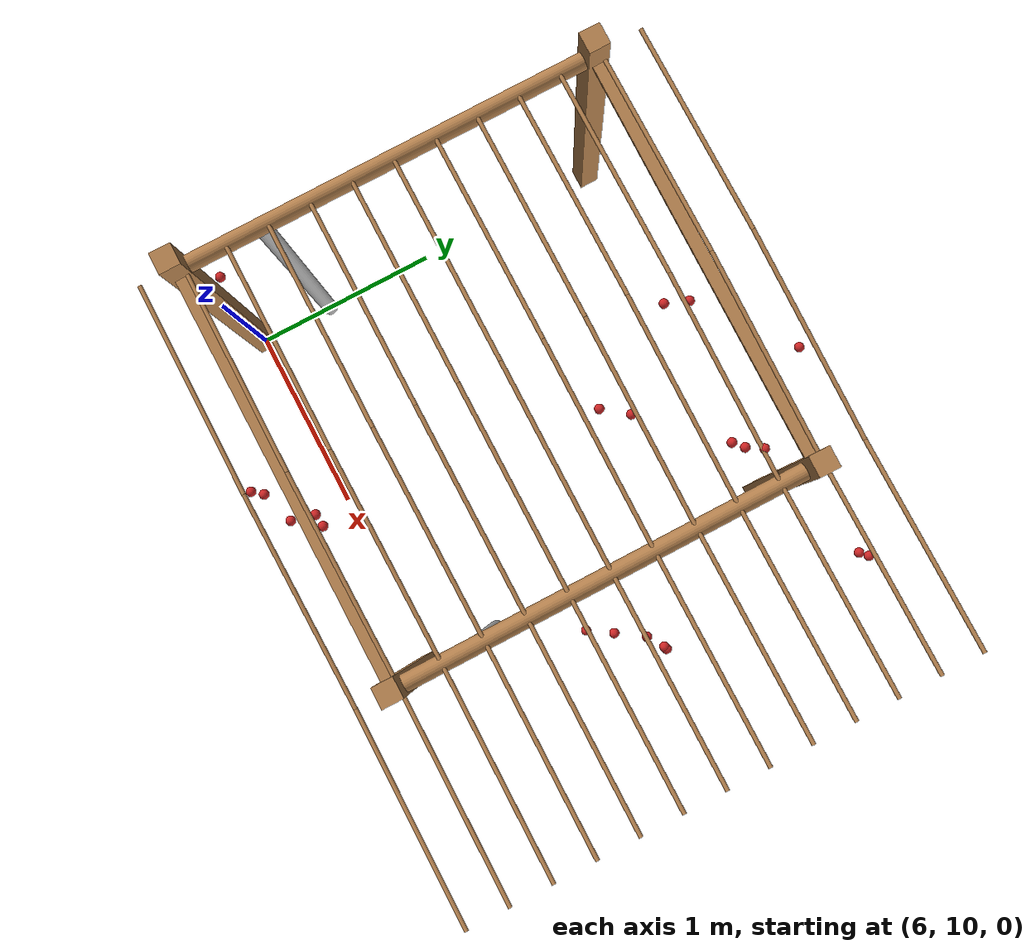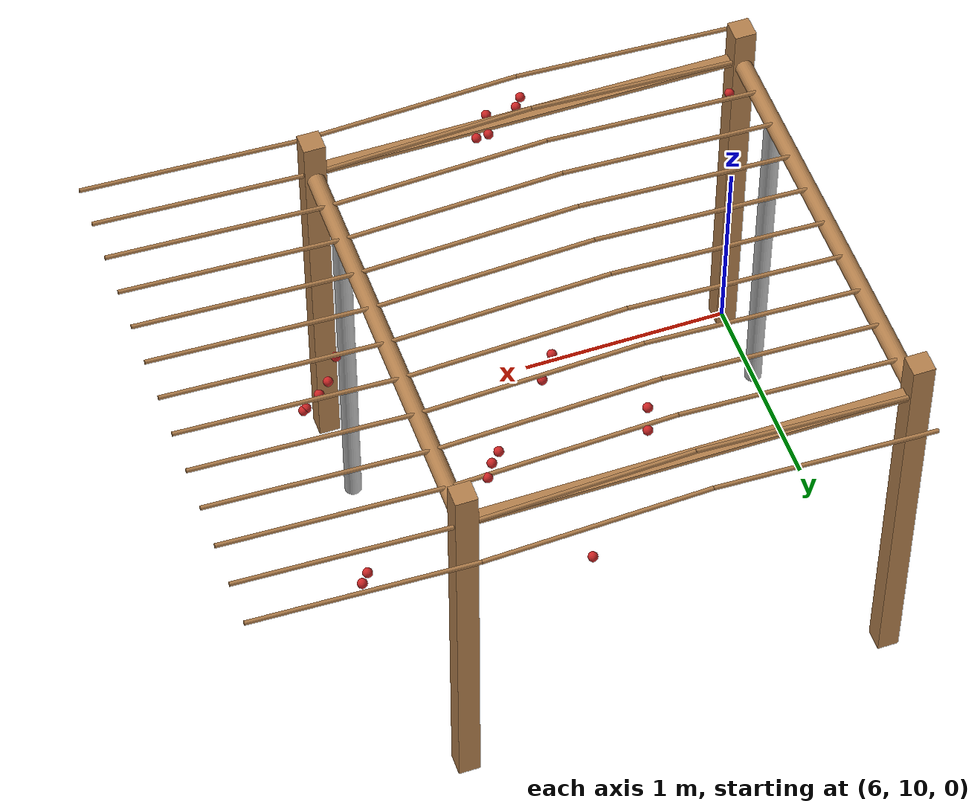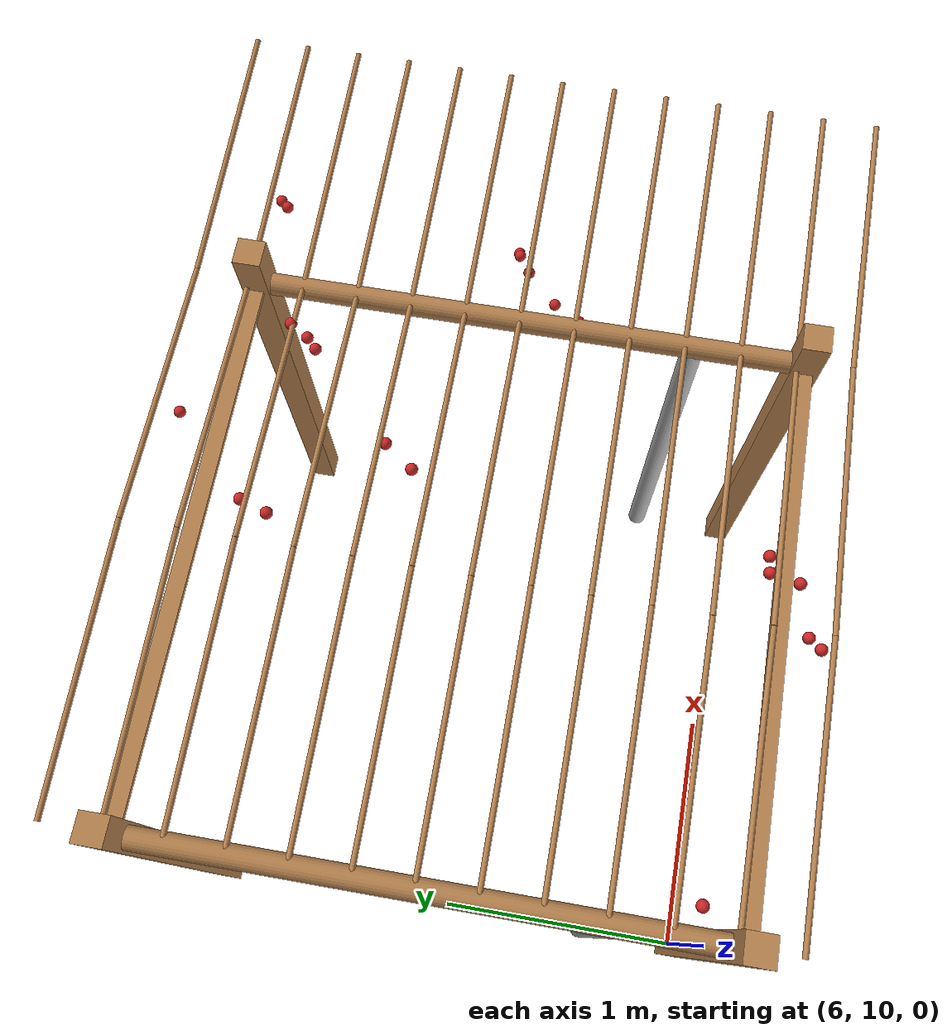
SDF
<sdf version="1.4">
 <model name="pergola">
  <include><name>post_38</name><pose>6.0 10.0 0 0 0 0</pose><uri>model://post</uri></include>
  <include><name>post_39</name><pose>6.0 12.0 0 0 0 0</pose><uri>model://post</uri></include>
  <include><name>post_49</name><pose>8.0 10.0 0 0 0 0</pose><uri>model://post</uri></include>
  <include><name>post_50</name><pose>8.0 12.0 0 0 0 0</pose><uri>model://post</uri></include>
  <link name="beam_38">
   <pose>7.0 10.0 1.81 0 0 0</pose>
   <collision name="collision"><geometry><box><size>2.0 0.06 0.02</size></box></geometry></collision>
   <visual name="visual">
    <geometry><box><size>2.0 0.06 0.02</size></box></geometry>
    <material><script><name>Gazebo/Wood</name></script></material>
   </visual>
   <inertial>
    <mass>5</mass>
    <inertia>
     <ixx>0.0016666666666666668</ixx>
     <ixy>0.0</ixy>
     <ixz>0.0</ixz>
     <iyy>1.6681666666666664</iyy>
     <iyz>0.0</iyz>
     <izz>1.6668333333333332</izz>
    </inertia>
   </inertial>
  </link>
  <link name="beam_39">
   <pose>7.0 12.0 1.81 0 0 0</pose>
   <collision name="collision"><geometry><box><size>2.0 0.06 0.02</size></box></geometry></collision>
   <visual name="visual">
    <geometry><box><size>2.0 0.06 0.02</size></box></geometry>
    <material><script><name>Gazebo/Wood</name></script></material>
   </visual>
   <inertial>
    <mass>5</mass>
    <inertia>
     <ixx>0.0016666666666666668</ixx>
     <ixy>0.0</ixy>
     <ixz>0.0</ixz>
     <iyy>1.6681666666666664</iyy>
     <iyz>0.0</iyz>
     <izz>1.6668333333333332</izz>
    </inertia>
   </inertial>
  </link>
  <include><name>tree_35</name><pose>6.0 10.4 0 0 0 0</pose><uri>model://tree_trunk</uri></include>
  <include><name>tree_45</name><pose>8.0 10.4 0 0 0 0</pose><uri>model://tree_trunk</uri></include>
  <link name="baseBranch_35">
   <pose>6.0 11.0 1.8 1.5707963267948966 0 0</pose>
   <collision name="collision">
    <geometry><cylinder><radius>0.04</radius><length>1.94</length></cylinder></geometry>
   </collision>
   <visual name="visual">
    <geometry><cylinder><radius>0.04</radius><length>1.94</length></cylinder></geometry>
    <material><script><name>Gazebo/WoodFloor</name></script></material>
   </visual>
   <inertial>
    <mass>10</mass>
    <inertia>
     <ixx>3.140333333333333</ixx>
     <ixy>0.0</ixy>
     <ixz>0.0</ixz>
     <iyy>3.140333333333333</iyy>
     <iyz>0.0</iyz>
     <izz>0.008</izz>
    </inertia>
   </inertial>
  </link>
  <link name="baseBranch_45">
   <pose>8.0 11.0 1.8 1.5707963267948966 0 0</pose>
   <collision name="collision">
    <geometry><cylinder><radius>0.04</radius><length>1.94</length></cylinder></geometry>
   </collision>
   <visual name="visual">
    <geometry><cylinder><radius>0.04</radius><length>1.94</length></cylinder></geometry>
    <material><script><name>Gazebo/WoodFloor</name></script></material>
   </visual>
   <inertial>
    <mass>10</mass>
    <inertia>
     <ixx>3.140333333333333</ixx>
     <ixy>0.0</ixy>
     <ixz>0.0</ixz>
     <iyy>3.140333333333333</iyy>
     <iyz>0.0</iyz>
     <izz>0.008</izz>
    </inertia>
   </inertial>
  </link>
  <link name="vine_698">
   <pose>6.5 9.83 1.85 0 1.5208379310729538 0</pose>
   <collision name="collision">
    <geometry><cylinder><radius>0.01</radius><length>1.0012492197250393</length></cylinder></geometry>
   </collision>
   <visual name="visual">
    <geometry><cylinder><radius>0.01</radius><length>1.0012492197250393</length></cylinder></geometry>
    <material><script><name>Gazebo/WoodFloor</name></script></material>
   </visual>
   <inertial>
    <mass>5</mass>
    <inertia>
     <ixx>0.41783333333333345</ixx>
     <ixy>0.0</ixy>
     <ixz>0.0</ixz>
     <iyy>0.41783333333333345</iyy>
     <iyz>0.0</iyz>
     <izz>0.00025</izz>
    </inertia>
   </inertial>
  </link>
  <link name="vine_699">
   <pose>7.5 9.83 1.85 0 -1.5208379310729538 0</pose>
   <collision name="collision">
    <geometry><cylinder><radius>0.01</radius><length>1.0012492197250393</length></cylinder></geometry>
   </collision>
   <visual name="visual">
    <geometry><cylinder><radius>0.01</radius><length>1.0012492197250393</length></cylinder></geometry>
    <material><script><name>Gazebo/WoodFloor</name></script></material>
   </visual>
   <inertial>
    <mass>5</mass>
    <inertia>
     <ixx>0.41783333333333345</ixx>
     <ixy>0.0</ixy>
     <ixz>0.0</ixz>
     <iyy>0.41783333333333345</iyy>
     <iyz>0.0</iyz>
     <izz>0.00025</izz>
    </inertia>
   </inertial>
  </link>
  <link name="vine_700">
   <pose>6.5 10.03 1.85 0 1.5208379310729538 0</pose>
   <collision name="collision">
    <geometry><cylinder><radius>0.01</radius><length>1.0012492197250393</length></cylinder></geometry>
   </collision>
   <visual name="visual">
    <geometry><cylinder><radius>0.01</radius><length>1.0012492197250393</length></cylinder></geometry>
    <material><script><name>Gazebo/WoodFloor</name></script></material>
   </visual>
   <inertial>
    <mass>5</mass>
    <inertia>
     <ixx>0.41783333333333345</ixx>
     <ixy>0.0</ixy>
     <ixz>0.0</ixz>
     <iyy>0.41783333333333345</iyy>
     <iyz>0.0</iyz>
     <izz>0.00025</izz>
    </inertia>
   </inertial>
  </link>
  <link name="vine_701">
   <pose>7.5 10.03 1.85 0 -1.5208379310729538 0</pose>
   <collision name="collision">
    <geometry><cylinder><radius>0.01</radius><length>1.0012492197250393</length></cylinder></geometry>
   </collision>
   <visual name="visual">
    <geometry><cylinder><radius>0.01</radius><length>1.0012492197250393</length></cylinder></geometry>
    <material><script><name>Gazebo/WoodFloor</name></script></material>
   </visual>
   <inertial>
    <mass>5</mass>
    <inertia>
     <ixx>0.41783333333333345</ixx>
     <ixy>0.0</ixy>
     <ixz>0.0</ixz>
     <iyy>0.41783333333333345</iyy>
     <iyz>0.0</iyz>
     <izz>0.00025</izz>
    </inertia>
   </inertial>
  </link>
  <link name="vine_702">
   <pose>6.5 10.23 1.85 0 1.5208379310729538 0</pose>
   <collision name="collision">
    <geometry><cylinder><radius>0.01</radius><length>1.0012492197250393</length></cylinder></geometry>
   </collision>
   <visual name="visual">
    <geometry><cylinder><radius>0.01</radius><length>1.0012492197250393</length></cylinder></geometry>
    <material><script><name>Gazebo/WoodFloor</name></script></material>
   </visual>
   <inertial>
    <mass>5</mass>
    <inertia>
     <ixx>0.41783333333333345</ixx>
     <ixy>0.0</ixy>
     <ixz>0.0</ixz>
     <iyy>0.41783333333333345</iyy>
     <iyz>0.0</iyz>
     <izz>0.00025</izz>
    </inertia>
   </inertial>
  </link>
  <link name="vine_703">
   <pose>7.5 10.23 1.85 0 -1.5208379310729538 0</pose>
   <collision name="collision">
    <geometry><cylinder><radius>0.01</radius><length>1.0012492197250393</length></cylinder></geometry>
   </collision>
   <visual name="visual">
    <geometry><cylinder><radius>0.01</radius><length>1.0012492197250393</length></cylinder></geometry>
    <material><script><name>Gazebo/WoodFloor</name></script></material>
   </visual>
   <inertial>
    <mass>5</mass>
    <inertia>
     <ixx>0.41783333333333345</ixx>
     <ixy>0.0</ixy>
     <ixz>0.0</ixz>
     <iyy>0.41783333333333345</iyy>
     <iyz>0.0</iyz>
     <izz>0.00025</izz>
    </inertia>
   </inertial>
  </link>
  <link name="vine_704">
   <pose>6.5 10.43 1.85 0 1.5208379310729538 0</pose>
   <collision name="collision">
    <geometry><cylinder><radius>0.01</radius><length>1.0012492197250393</length></cylinder></geometry>
   </collision>
   <visual name="visual">
    <geometry><cylinder><radius>0.01</radius><length>1.0012492197250393</length></cylinder></geometry>
    <material><script><name>Gazebo/WoodFloor</name></script></material>
   </visual>
   <inertial>
    <mass>5</mass>
    <inertia>
     <ixx>0.41783333333333345</ixx>
     <ixy>0.0</ixy>
     <ixz>0.0</ixz>
     <iyy>0.41783333333333345</iyy>
     <iyz>0.0</iyz>
     <izz>0.00025</izz>
    </inertia>
   </inertial>
  </link>
  <link name="vine_705">
   <pose>7.5 10.43 1.85 0 -1.5208379310729538 0</pose>
   <collision name="collision">
    <geometry><cylinder><radius>0.01</radius><length>1.0012492197250393</length></cylinder></geometry>
   </collision>
   <visual name="visual">
    <geometry><cylinder><radius>0.01</radius><length>1.0012492197250393</length></cylinder></geometry>
    <material><script><name>Gazebo/WoodFloor</name></script></material>
   </visual>
   <inertial>
    <mass>5</mass>
    <inertia>
     <ixx>0.41783333333333345</ixx>
     <ixy>0.0</ixy>
     <ixz>0.0</ixz>
     <iyy>0.41783333333333345</iyy>
     <iyz>0.0</iyz>
     <izz>0.00025</izz>
    </inertia>
   </inertial>
  </link>
  <link name="vine_706">
   <pose>6.5 10.63 1.85 0 1.5208379310729538 0</pose>
   <collision name="collision">
    <geometry><cylinder><radius>0.01</radius><length>1.0012492197250393</length></cylinder></geometry>
   </collision>
   <visual name="visual">
    <geometry><cylinder><radius>0.01</radius><length>1.0012492197250393</length></cylinder></geometry>
    <material><script><name>Gazebo/WoodFloor</name></script></material>
   </visual>
   <inertial>
    <mass>5</mass>
    <inertia>
     <ixx>0.41783333333333345</ixx>
     <ixy>0.0</ixy>
     <ixz>0.0</ixz>
     <iyy>0.41783333333333345</iyy>
     <iyz>0.0</iyz>
     <izz>0.00025</izz>
    </inertia>
   </inertial>
  </link>
  <link name="vine_707">
   <pose>7.5 10.63 1.85 0 -1.5208379310729538 0</pose>
   <collision name="collision">
    <geometry><cylinder><radius>0.01</radius><length>1.0012492197250393</length></cylinder></geometry>
   </collision>
   <visual name="visual">
    <geometry><cylinder><radius>0.01</radius><length>1.0012492197250393</length></cylinder></geometry>
    <material><script><name>Gazebo/WoodFloor</name></script></material>
   </visual>
   <inertial>
    <mass>5</mass>
    <inertia>
     <ixx>0.41783333333333345</ixx>
     <ixy>0.0</ixy>
     <ixz>0.0</ixz>
     <iyy>0.41783333333333345</iyy>
     <iyz>0.0</iyz>
     <izz>0.00025</izz>
    </inertia>
   </inertial>
  </link>
  <link name="vine_708">
   <pose>6.5 10.83 1.85 0 1.5208379310729538 0</pose>
   <collision name="collision">
    <geometry><cylinder><radius>0.01</radius><length>1.0012492197250393</length></cylinder></geometry>
   </collision>
   <visual name="visual">
    <geometry><cylinder><radius>0.01</radius><length>1.0012492197250393</length></cylinder></geometry>
    <material><script><name>Gazebo/WoodFloor</name></script></material>
   </visual>
   <inertial>
    <mass>5</mass>
    <inertia>
     <ixx>0.41783333333333345</ixx>
     <ixy>0.0</ixy>
     <ixz>0.0</ixz>
     <iyy>0.41783333333333345</iyy>
     <iyz>0.0</iyz>
     <izz>0.00025</izz>
    </inertia>
   </inertial>
  </link>
  <link name="vine_709">
   <pose>7.5 10.83 1.85 0 -1.5208379310729538 0</pose>
   <collision name="collision">
    <geometry><cylinder><radius>0.01</radius><length>1.0012492197250393</length></cylinder></geometry>
   </collision>
   <visual name="visual">
    <geometry><cylinder><radius>0.01</radius><length>1.0012492197250393</length></cylinder></geometry>
    <material><script><name>Gazebo/WoodFloor</name></script></material>
   </visual>
   <inertial>
    <mass>5</mass>
    <inertia>
     <ixx>0.41783333333333345</ixx>
     <ixy>0.0</ixy>
     <ixz>0.0</ixz>
     <iyy>0.41783333333333345</iyy>
     <iyz>0.0</iyz>
     <izz>0.00025</izz>
    </inertia>
   </inertial>
  </link>
  <link name="vine_710">
   <pose>6.5 11.03 1.85 0 1.5208379310729538 0</pose>
   <collision name="collision">
    <geometry><cylinder><radius>0.01</radius><length>1.0012492197250393</length></cylinder></geometry>
   </collision>
   <visual name="visual">
    <geometry><cylinder><radius>0.01</radius><length>1.0012492197250393</length></cylinder></geometry>
    <material><script><name>Gazebo/WoodFloor</name></script></material>
   </visual>
   <inertial>
    <mass>5</mass>
    <inertia>
     <ixx>0.41783333333333345</ixx>
     <ixy>0.0</ixy>
     <ixz>0.0</ixz>
     <iyy>0.41783333333333345</iyy>
     <iyz>0.0</iyz>
     <izz>0.00025</izz>
    </inertia>
   </inertial>
  </link>
  <link name="vine_711">
   <pose>7.5 11.03 1.85 0 -1.5208379310729538 0</pose>
   <collision name="collision">
    <geometry><cylinder><radius>0.01</radius><length>1.0012492197250393</length></cylinder></geometry>
   </collision>
   <visual name="visual">
    <geometry><cylinder><radius>0.01</radius><length>1.0012492197250393</length></cylinder></geometry>
    <material><script><name>Gazebo/WoodFloor</name></script></material>
   </visual>
   <inertial>
    <mass>5</mass>
    <inertia>
     <ixx>0.41783333333333345</ixx>
     <ixy>0.0</ixy>
     <ixz>0.0</ixz>
     <iyy>0.41783333333333345</iyy>
     <iyz>0.0</iyz>
     <izz>0.00025</izz>
    </inertia>
   </inertial>
  </link>
  <link name="vine_712">
   <pose>6.5 11.23 1.85 0 1.5208379310729538 0</pose>
   <collision name="collision">
    <geometry><cylinder><radius>0.01</radius><length>1.0012492197250393</length></cylinder></geometry>
   </collision>
   <visual name="visual">
    <geometry><cylinder><radius>0.01</radius><length>1.0012492197250393</length></cylinder></geometry>
    <material><script><name>Gazebo/WoodFloor</name></script></material>
   </visual>
   <inertial>
    <mass>5</mass>
    <inertia>
     <ixx>0.41783333333333345</ixx>
     <ixy>0.0</ixy>
     <ixz>0.0</ixz>
     <iyy>0.41783333333333345</iyy>
     <iyz>0.0</iyz>
     <izz>0.00025</izz>
    </inertia>
   </inertial>
  </link>
  <link name="vine_713">
   <pose>7.5 11.23 1.85 0 -1.5208379310729538 0</pose>
   <collision name="collision">
    <geometry><cylinder><radius>0.01</radius><length>1.0012492197250393</length></cylinder></geometry>
   </collision>
   <visual name="visual">
    <geometry><cylinder><radius>0.01</radius><length>1.0012492197250393</length></cylinder></geometry>
    <material><script><name>Gazebo/WoodFloor</name></script></material>
   </visual>
   <inertial>
    <mass>5</mass>
    <inertia>
     <ixx>0.41783333333333345</ixx>
     <ixy>0.0</ixy>
     <ixz>0.0</ixz>
     <iyy>0.41783333333333345</iyy>
     <iyz>0.0</iyz>
     <izz>0.00025</izz>
    </inertia>
   </inertial>
  </link>
  <link name="vine_714">
   <pose>6.5 11.43 1.85 0 1.5208379310729538 0</pose>
   <collision name="collision">
    <geometry><cylinder><radius>0.01</radius><length>1.0012492197250393</length></cylinder></geometry>
   </collision>
   <visual name="visual">
    <geometry><cylinder><radius>0.01</radius><length>1.0012492197250393</length></cylinder></geometry>
    <material><script><name>Gazebo/WoodFloor</name></script></material>
   </visual>
   <inertial>
    <mass>5</mass>
    <inertia>
     <ixx>0.41783333333333345</ixx>
     <ixy>0.0</ixy>
     <ixz>0.0</ixz>
     <iyy>0.41783333333333345</iyy>
     <iyz>0.0</iyz>
     <izz>0.00025</izz>
    </inertia>
   </inertial>
  </link>
  <link name="vine_715">
   <pose>7.5 11.43 1.85 0 -1.5208379310729538 0</pose>
   <collision name="collision">
    <geometry><cylinder><radius>0.01</radius><length>1.0012492197250393</length></cylinder></geometry>
   </collision>
   <visual name="visual">
    <geometry><cylinder><radius>0.01</radius><length>1.0012492197250393</length></cylinder></geometry>
    <material><script><name>Gazebo/WoodFloor</name></script></material>
   </visual>
   <inertial>
    <mass>5</mass>
    <inertia>
     <ixx>0.41783333333333345</ixx>
     <ixy>0.0</ixy>
     <ixz>0.0</ixz>
     <iyy>0.41783333333333345</iyy>
     <iyz>0.0</iyz>
     <izz>0.00025</izz>
    </inertia>
   </inertial>
  </link>
  <link name="vine_716">
   <pose>6.5 11.63 1.85 0 1.5208379310729538 0</pose>
   <collision name="collision">
    <geometry><cylinder><radius>0.01</radius><length>1.0012492197250393</length></cylinder></geometry>
   </collision>
   <visual name="visual">
    <geometry><cylinder><radius>0.01</radius><length>1.0012492197250393</length></cylinder></geometry>
    <material><script><name>Gazebo/WoodFloor</name></script></material>
   </visual>
   <inertial>
    <mass>5</mass>
    <inertia>
     <ixx>0.41783333333333345</ixx>
     <ixy>0.0</ixy>
     <ixz>0.0</ixz>
     <iyy>0.41783333333333345</iyy>
     <iyz>0.0</iyz>
     <izz>0.00025</izz>
    </inertia>
   </inertial>
  </link>
  <link name="vine_717">
   <pose>7.5 11.63 1.85 0 -1.5208379310729538 0</pose>
   <collision name="collision">
    <geometry><cylinder><radius>0.01</radius><length>1.0012492197250393</length></cylinder></geometry>
   </collision>
   <visual name="visual">
    <geometry><cylinder><radius>0.01</radius><length>1.0012492197250393</length></cylinder></geometry>
    <material><script><name>Gazebo/WoodFloor</name></script></material>
   </visual>
   <inertial>
    <mass>5</mass>
    <inertia>
     <ixx>0.41783333333333345</ixx>
     <ixy>0.0</ixy>
     <ixz>0.0</ixz>
     <iyy>0.41783333333333345</iyy>
     <iyz>0.0</iyz>
     <izz>0.00025</izz>
    </inertia>
   </inertial>
  </link>
  <link name="vine_718">
   <pose>6.5 11.83 1.85 0 1.5208379310729538 0</pose>
   <collision name="collision">
    <geometry><cylinder><radius>0.01</radius><length>1.0012492197250393</length></cylinder></geometry>
   </collision>
   <visual name="visual">
    <geometry><cylinder><radius>0.01</radius><length>1.0012492197250393</length></cylinder></geometry>
    <material><script><name>Gazebo/WoodFloor</name></script></material>
   </visual>
   <inertial>
    <mass>5</mass>
    <inertia>
     <ixx>0.41783333333333345</ixx>
     <ixy>0.0</ixy>
     <ixz>0.0</ixz>
     <iyy>0.41783333333333345</iyy>
     <iyz>0.0</iyz>
     <izz>0.00025</izz>
    </inertia>
   </inertial>
  </link>
  <link name="vine_719">
   <pose>7.5 11.83 1.85 0 -1.5208379310729538 0</pose>
   <collision name="collision">
    <geometry><cylinder><radius>0.01</radius><length>1.0012492197250393</length></cylinder></geometry>
   </collision>
   <visual name="visual">
    <geometry><cylinder><radius>0.01</radius><length>1.0012492197250393</length></cylinder></geometry>
    <material><script><name>Gazebo/WoodFloor</name></script></material>
   </visual>
   <inertial>
    <mass>5</mass>
    <inertia>
     <ixx>0.41783333333333345</ixx>
     <ixy>0.0</ixy>
     <ixz>0.0</ixz>
     <iyy>0.41783333333333345</iyy>
     <iyz>0.0</iyz>
     <izz>0.00025</izz>
    </inertia>
   </inertial>
  </link>
  <link name="vine_720">
   <pose>6.5 12.03 1.85 0 1.5208379310729538 0</pose>
   <collision name="collision">
    <geometry><cylinder><radius>0.01</radius><length>1.0012492197250393</length></cylinder></geometry>
   </collision>
   <visual name="visual">
    <geometry><cylinder><radius>0.01</radius><length>1.0012492197250393</length></cylinder></geometry>
    <material><script><name>Gazebo/WoodFloor</name></script></material>
   </visual>
   <inertial>
    <mass>5</mass>
    <inertia>
     <ixx>0.41783333333333345</ixx>
     <ixy>0.0</ixy>
     <ixz>0.0</ixz>
     <iyy>0.41783333333333345</iyy>
     <iyz>0.0</iyz>
     <izz>0.00025</izz>
    </inertia>
   </inertial>
  </link>
  <link name="vine_721">
   <pose>7.5 12.03 1.85 0 -1.5208379310729538 0</pose>
   <collision name="collision">
    <geometry><cylinder><radius>0.01</radius><length>1.0012492197250393</length></cylinder></geometry>
   </collision>
   <visual name="visual">
    <geometry><cylinder><radius>0.01</radius><length>1.0012492197250393</length></cylinder></geometry>
    <material><script><name>Gazebo/WoodFloor</name></script></material>
   </visual>
   <inertial>
    <mass>5</mass>
    <inertia>
     <ixx>0.41783333333333345</ixx>
     <ixy>0.0</ixy>
     <ixz>0.0</ixz>
     <iyy>0.41783333333333345</iyy>
     <iyz>0.0</iyz>
     <izz>0.00025</izz>
    </inertia>
   </inertial>
  </link>
  <link name="vine_722">
   <pose>6.5 12.23 1.85 0 1.5208379310729538 0</pose>
   <collision name="collision">
    <geometry><cylinder><radius>0.01</radius><length>1.0012492197250393</length></cylinder></geometry>
   </collision>
   <visual name="visual">
    <geometry><cylinder><radius>0.01</radius><length>1.0012492197250393</length></cylinder></geometry>
    <material><script><name>Gazebo/WoodFloor</name></script></material>
   </visual>
   <inertial>
    <mass>5</mass>
    <inertia>
     <ixx>0.41783333333333345</ixx>
     <ixy>0.0</ixy>
     <ixz>0.0</ixz>
     <iyy>0.41783333333333345</iyy>
     <iyz>0.0</iyz>
     <izz>0.00025</izz>
    </inertia>
   </inertial>
  </link>
  <link name="vine_723">
   <pose>7.5 12.23 1.85 0 -1.5208379310729538 0</pose>
   <collision name="collision">
    <geometry><cylinder><radius>0.01</radius><length>1.0012492197250393</length></cylinder></geometry>
   </collision>
   <visual name="visual">
    <geometry><cylinder><radius>0.01</radius><length>1.0012492197250393</length></cylinder></geometry>
    <material><script><name>Gazebo/WoodFloor</name></script></material>
   </visual>
   <inertial>
    <mass>5</mass>
    <inertia>
     <ixx>0.41783333333333345</ixx>
     <ixy>0.0</ixy>
     <ixz>0.0</ixz>
     <iyy>0.41783333333333345</iyy>
     <iyz>0.0</iyz>
     <izz>0.00025</izz>
    </inertia>
   </inertial>
  </link>
  <link name="vine_898">
   <pose>8.5 9.83 1.85 0 1.5208379310729538 0</pose>
   <collision name="collision">
    <geometry><cylinder><radius>0.01</radius><length>1.0012492197250393</length></cylinder></geometry>
   </collision>
   <visual name="visual">
    <geometry><cylinder><radius>0.01</radius><length>1.0012492197250393</length></cylinder></geometry>
    <material><script><name>Gazebo/WoodFloor</name></script></material>
   </visual>
   <inertial>
    <mass>5</mass>
    <inertia>
     <ixx>0.41783333333333345</ixx>
     <ixy>0.0</ixy>
     <ixz>0.0</ixz>
     <iyy>0.41783333333333345</iyy>
     <iyz>0.0</iyz>
     <izz>0.00025</izz>
    </inertia>
   </inertial>
  </link>
  <link name="vine_900">
   <pose>8.5 10.03 1.85 0 1.5208379310729538 0</pose>
   <collision name="collision">
    <geometry><cylinder><radius>0.01</radius><length>1.0012492197250393</length></cylinder></geometry>
   </collision>
   <visual name="visual">
    <geometry><cylinder><radius>0.01</radius><length>1.0012492197250393</length></cylinder></geometry>
    <material><script><name>Gazebo/WoodFloor</name></script></material>
   </visual>
   <inertial>
    <mass>5</mass>
    <inertia>
     <ixx>0.41783333333333345</ixx>
     <ixy>0.0</ixy>
     <ixz>0.0</ixz>
     <iyy>0.41783333333333345</iyy>
     <iyz>0.0</iyz>
     <izz>0.00025</izz>
    </inertia>
   </inertial>
  </link>
  <link name="vine_902">
   <pose>8.5 10.23 1.85 0 1.5208379310729538 0</pose>
   <collision name="collision">
    <geometry><cylinder><radius>0.01</radius><length>1.0012492197250393</length></cylinder></geometry>
   </collision>
   <visual name="visual">
    <geometry><cylinder><radius>0.01</radius><length>1.0012492197250393</length></cylinder></geometry>
    <material><script><name>Gazebo/WoodFloor</name></script></material>
   </visual>
   <inertial>
    <mass>5</mass>
    <inertia>
     <ixx>0.41783333333333345</ixx>
     <ixy>0.0</ixy>
     <ixz>0.0</ixz>
     <iyy>0.41783333333333345</iyy>
     <iyz>0.0</iyz>
     <izz>0.00025</izz>
    </inertia>
   </inertial>
  </link>
  <link name="vine_904">
   <pose>8.5 10.43 1.85 0 1.5208379310729538 0</pose>
   <collision name="collision">
    <geometry><cylinder><radius>0.01</radius><length>1.0012492197250393</length></cylinder></geometry>
   </collision>
   <visual name="visual">
    <geometry><cylinder><radius>0.01</radius><length>1.0012492197250393</length></cylinder></geometry>
    <material><script><name>Gazebo/WoodFloor</name></script></material>
   </visual>
   <inertial>
    <mass>5</mass>
    <inertia>
     <ixx>0.41783333333333345</ixx>
     <ixy>0.0</ixy>
     <ixz>0.0</ixz>
     <iyy>0.41783333333333345</iyy>
     <iyz>0.0</iyz>
     <izz>0.00025</izz>
    </inertia>
   </inertial>
  </link>
  <link name="vine_906">
   <pose>8.5 10.63 1.85 0 1.5208379310729538 0</pose>
   <collision name="collision">
    <geometry><cylinder><radius>0.01</radius><length>1.0012492197250393</length></cylinder></geometry>
   </collision>
   <visual name="visual">
    <geometry><cylinder><radius>0.01</radius><length>1.0012492197250393</length></cylinder></geometry>
    <material><script><name>Gazebo/WoodFloor</name></script></material>
   </visual>
   <inertial>
    <mass>5</mass>
    <inertia>
     <ixx>0.41783333333333345</ixx>
     <ixy>0.0</ixy>
     <ixz>0.0</ixz>
     <iyy>0.41783333333333345</iyy>
     <iyz>0.0</iyz>
     <izz>0.00025</izz>
    </inertia>
   </inertial>
  </link>
  <link name="vine_908">
   <pose>8.5 10.83 1.85 0 1.5208379310729538 0</pose>
   <collision name="collision">
    <geometry><cylinder><radius>0.01</radius><length>1.0012492197250393</length></cylinder></geometry>
   </collision>
   <visual name="visual">
    <geometry><cylinder><radius>0.01</radius><length>1.0012492197250393</length></cylinder></geometry>
    <material><script><name>Gazebo/WoodFloor</name></script></material>
   </visual>
   <inertial>
    <mass>5</mass>
    <inertia>
     <ixx>0.41783333333333345</ixx>
     <ixy>0.0</ixy>
     <ixz>0.0</ixz>
     <iyy>0.41783333333333345</iyy>
     <iyz>0.0</iyz>
     <izz>0.00025</izz>
    </inertia>
   </inertial>
  </link>
  <link name="vine_910">
   <pose>8.5 11.03 1.85 0 1.5208379310729538 0</pose>
   <collision name="collision">
    <geometry><cylinder><radius>0.01</radius><length>1.0012492197250393</length></cylinder></geometry>
   </collision>
   <visual name="visual">
    <geometry><cylinder><radius>0.01</radius><length>1.0012492197250393</length></cylinder></geometry>
    <material><script><name>Gazebo/WoodFloor</name></script></material>
   </visual>
   <inertial>
    <mass>5</mass>
    <inertia>
     <ixx>0.41783333333333345</ixx>
     <ixy>0.0</ixy>
     <ixz>0.0</ixz>
     <iyy>0.41783333333333345</iyy>
     <iyz>0.0</iyz>
     <izz>0.00025</izz>
    </inertia>
   </inertial>
  </link>
  <link name="vine_912">
   <pose>8.5 11.23 1.85 0 1.5208379310729538 0</pose>
   <collision name="collision">
    <geometry><cylinder><radius>0.01</radius><length>1.0012492197250393</length></cylinder></geometry>
   </collision>
   <visual name="visual">
    <geometry><cylinder><radius>0.01</radius><length>1.0012492197250393</length></cylinder></geometry>
    <material><script><name>Gazebo/WoodFloor</name></script></material>
   </visual>
   <inertial>
    <mass>5</mass>
    <inertia>
     <ixx>0.41783333333333345</ixx>
     <ixy>0.0</ixy>
     <ixz>0.0</ixz>
     <iyy>0.41783333333333345</iyy>
     <iyz>0.0</iyz>
     <izz>0.00025</izz>
    </inertia>
   </inertial>
  </link>
  <link name="vine_914">
   <pose>8.5 11.43 1.85 0 1.5208379310729538 0</pose>
   <collision name="collision">
    <geometry><cylinder><radius>0.01</radius><length>1.0012492197250393</length></cylinder></geometry>
   </collision>
   <visual name="visual">
    <geometry><cylinder><radius>0.01</radius><length>1.0012492197250393</length></cylinder></geometry>
    <material><script><name>Gazebo/WoodFloor</name></script></material>
   </visual>
   <inertial>
    <mass>5</mass>
    <inertia>
     <ixx>0.41783333333333345</ixx>
     <ixy>0.0</ixy>
     <ixz>0.0</ixz>
     <iyy>0.41783333333333345</iyy>
     <iyz>0.0</iyz>
     <izz>0.00025</izz>
    </inertia>
   </inertial>
  </link>
  <link name="vine_916">
   <pose>8.5 11.63 1.85 0 1.5208379310729538 0</pose>
   <collision name="collision">
    <geometry><cylinder><radius>0.01</radius><length>1.0012492197250393</length></cylinder></geometry>
   </collision>
   <visual name="visual">
    <geometry><cylinder><radius>0.01</radius><length>1.0012492197250393</length></cylinder></geometry>
    <material><script><name>Gazebo/WoodFloor</name></script></material>
   </visual>
   <inertial>
    <mass>5</mass>
    <inertia>
     <ixx>0.41783333333333345</ixx>
     <ixy>0.0</ixy>
     <ixz>0.0</ixz>
     <iyy>0.41783333333333345</iyy>
     <iyz>0.0</iyz>
     <izz>0.00025</izz>
    </inertia>
   </inertial>
  </link>
  <link name="vine_918">
   <pose>8.5 11.83 1.85 0 1.5208379310729538 0</pose>
   <collision name="collision">
    <geometry><cylinder><radius>0.01</radius><length>1.0012492197250393</length></cylinder></geometry>
   </collision>
   <visual name="visual">
    <geometry><cylinder><radius>0.01</radius><length>1.0012492197250393</length></cylinder></geometry>
    <material><script><name>Gazebo/WoodFloor</name></script></material>
   </visual>
   <inertial>
    <mass>5</mass>
    <inertia>
     <ixx>0.41783333333333345</ixx>
     <ixy>0.0</ixy>
     <ixz>0.0</ixz>
     <iyy>0.41783333333333345</iyy>
     <iyz>0.0</iyz>
     <izz>0.00025</izz>
    </inertia>
   </inertial>
  </link>
  <link name="vine_920">
   <pose>8.5 12.03 1.85 0 1.5208379310729538 0</pose>
   <collision name="collision">
    <geometry><cylinder><radius>0.01</radius><length>1.0012492197250393</length></cylinder></geometry>
   </collision>
   <visual name="visual">
    <geometry><cylinder><radius>0.01</radius><length>1.0012492197250393</length></cylinder></geometry>
    <material><script><name>Gazebo/WoodFloor</name></script></material>
   </visual>
   <inertial>
    <mass>5</mass>
    <inertia>
     <ixx>0.41783333333333345</ixx>
     <ixy>0.0</ixy>
     <ixz>0.0</ixz>
     <iyy>0.41783333333333345</iyy>
     <iyz>0.0</iyz>
     <izz>0.00025</izz>
    </inertia>
   </inertial>
  </link>
  <link name="vine_922">
   <pose>8.5 12.23 1.85 0 1.5208379310729538 0</pose>
   <collision name="collision">
    <geometry><cylinder><radius>0.01</radius><length>1.0012492197250393</length></cylinder></geometry>
   </collision>
   <visual name="visual">
    <geometry><cylinder><radius>0.01</radius><length>1.0012492197250393</length></cylinder></geometry>
    <material><script><name>Gazebo/WoodFloor</name></script></material>
   </visual>
   <inertial>
    <mass>5</mass>
    <inertia>
     <ixx>0.41783333333333345</ixx>
     <ixy>0.0</ixy>
     <ixz>0.0</ixz>
     <iyy>0.41783333333333345</iyy>
     <iyz>0.0</iyz>
     <izz>0.00025</izz>
    </inertia>
   </inertial>
  </link>
  <link name="fruit_26">
   <pose>8.169974805492465 10.823847745498778 1.555327808617007 0 0 0</pose>
   <collision name="fruit_collision_26"><geometry><sphere><radius>0.022</radius></sphere></geometry></collision>
   <visual name="visual">
    <geometry><sphere><radius>0.022</radius></sphere></geometry>
    <material><script><name>Gazebo/Red</name></script></material>
   </visual>
   <inertial>
    <mass>0.05</mass>
    <inertia>
     <ixx>9.679999999999999e-06</ixx>
     <ixy>0.0</ixy>
     <ixz>0.0</ixz>
     <iyy>9.679999999999999e-06</iyy>
     <iyz>0.0</iyz>
     <izz>9.679999999999999e-06</izz>
    </inertia>
   </inertial>
   <sensor name="fruit_contact_26" type="contact">
    <contact><collision>fruit_collision_26</collision></contact>
   </sensor>
  </link>
  <link name="fruit_64">
   <pose>5.999868881909322 10.099049587393043 1.7608391942526216 0 0 0</pose>
   <collision name="fruit_collision_64"><geometry><sphere><radius>0.022</radius></sphere></geometry></collision>
   <visual name="visual">
    <geometry><sphere><radius>0.022</radius></sphere></geometry>
    <material><script><name>Gazebo/Red</name></script></material>
   </visual>
   <inertial>
    <mass>0.05</mass>
    <inertia>
     <ixx>9.679999999999999e-06</ixx>
     <ixy>0.0</ixy>
     <ixz>0.0</ixz>
     <iyy>9.679999999999999e-06</iyy>
     <iyz>0.0</iyz>
     <izz>9.679999999999999e-06</izz>
    </inertia>
   </inertial>
   <sensor name="fruit_contact_64" type="contact">
    <contact><collision>fruit_collision_64</collision></contact>
   </sensor>
  </link>
  <link name="fruit_72">
   <pose>8.417252830345651 12.013861887308977 1.658902313691568 0 0 0</pose>
   <collision name="fruit_collision_72"><geometry><sphere><radius>0.022</radius></sphere></geometry></collision>
   <visual name="visual">
    <geometry><sphere><radius>0.022</radius></sphere></geometry>
    <material><script><name>Gazebo/Red</name></script></material>
   </visual>
   <inertial>
    <mass>0.05</mass>
    <inertia>
     <ixx>9.679999999999999e-06</ixx>
     <ixy>0.0</ixy>
     <ixz>0.0</ixz>
     <iyy>9.679999999999999e-06</iyy>
     <iyz>0.0</iyz>
     <izz>9.679999999999999e-06</izz>
    </inertia>
   </inertial>
   <sensor name="fruit_contact_72" type="contact">
    <contact><collision>fruit_collision_72</collision></contact>
   </sensor>
  </link>
  <link name="fruit_76">
   <pose>7.103582590170362 11.748781084374802 1.868635742916556 0 0 0</pose>
   <collision name="fruit_collision_76"><geometry><sphere><radius>0.022</radius></sphere></geometry></collision>
   <visual name="visual">
    <geometry><sphere><radius>0.022</radius></sphere></geometry>
    <material><script><name>Gazebo/Red</name></script></material>
   </visual>
   <inertial>
    <mass>0.05</mass>
    <inertia>
     <ixx>9.679999999999999e-06</ixx>
     <ixy>0.0</ixy>
     <ixz>0.0</ixz>
     <iyy>9.679999999999999e-06</iyy>
     <iyz>0.0</iyz>
     <izz>9.679999999999999e-06</izz>
    </inertia>
   </inertial>
   <sensor name="fruit_contact_76" type="contact">
    <contact><collision>fruit_collision_76</collision></contact>
   </sensor>
  </link>
  <link name="fruit_140">
   <pose>7.750532907668257 11.729729967854825 1.8291908032610573 0 0 0</pose>
   <collision name="fruit_collision_140"><geometry><sphere><radius>0.022</radius></sphere></geometry></collision>
   <visual name="visual">
    <geometry><sphere><radius>0.022</radius></sphere></geometry>
    <material><script><name>Gazebo/Red</name></script></material>
   </visual>
   <inertial>
    <mass>0.05</mass>
    <inertia>
     <ixx>9.679999999999999e-06</ixx>
     <ixy>0.0</ixy>
     <ixz>0.0</ixz>
     <iyy>9.679999999999999e-06</iyy>
     <iyz>0.0</iyz>
     <izz>9.679999999999999e-06</izz>
    </inertia>
   </inertial>
   <sensor name="fruit_contact_140" type="contact">
    <contact><collision>fruit_collision_140</collision></contact>
   </sensor>
  </link>
  <link name="fruit_178">
   <pose>7.178964726023005 9.942876648443692 1.8066350316267208 0 0 0</pose>
   <collision name="fruit_collision_178"><geometry><sphere><radius>0.022</radius></sphere></geometry></collision>
   <visual name="visual">
    <geometry><sphere><radius>0.022</radius></sphere></geometry>
    <material><script><name>Gazebo/Red</name></script></material>
   </visual>
   <inertial>
    <mass>0.05</mass>
    <inertia>
     <ixx>9.679999999999999e-06</ixx>
     <ixy>0.0</ixy>
     <ixz>0.0</ixz>
     <iyy>9.679999999999999e-06</iyy>
     <iyz>0.0</iyz>
     <izz>9.679999999999999e-06</izz>
    </inertia>
   </inertial>
   <sensor name="fruit_contact_178" type="contact">
    <contact><collision>fruit_collision_178</collision></contact>
   </sensor>
  </link>
  <link name="fruit_218">
   <pose>7.514208831312141 12.220277108816811 1.6228857834768318 0 0 0</pose>
   <collision name="fruit_collision_218"><geometry><sphere><radius>0.022</radius></sphere></geometry></collision>
   <visual name="visual">
    <geometry><sphere><radius>0.022</radius></sphere></geometry>
    <material><script><name>Gazebo/Red</name></script></material>
   </visual>
   <inertial>
    <mass>0.05</mass>
    <inertia>
     <ixx>9.679999999999999e-06</ixx>
     <ixy>0.0</ixy>
     <ixz>0.0</ixz>
     <iyy>9.679999999999999e-06</iyy>
     <iyz>0.0</iyz>
     <izz>9.679999999999999e-06</izz>
    </inertia>
   </inertial>
   <sensor name="fruit_contact_218" type="contact">
    <contact><collision>fruit_collision_218</collision></contact>
   </sensor>
  </link>
  <link name="fruit_347">
   <pose>7.364143067437864 11.306361845975276 1.8062386055642148 0 0 0</pose>
   <collision name="fruit_collision_347"><geometry><sphere><radius>0.022</radius></sphere></geometry></collision>
   <visual name="visual">
    <geometry><sphere><radius>0.022</radius></sphere></geometry>
    <material><script><name>Gazebo/Red</name></script></material>
   </visual>
   <inertial>
    <mass>0.05</mass>
    <inertia>
     <ixx>9.679999999999999e-06</ixx>
     <ixy>0.0</ixy>
     <ixz>0.0</ixz>
     <iyy>9.679999999999999e-06</iyy>
     <iyz>0.0</iyz>
     <izz>9.679999999999999e-06</izz>
    </inertia>
   </inertial>
   <sensor name="fruit_contact_347" type="contact">
    <contact><collision>fruit_collision_347</collision></contact>
   </sensor>
  </link>
  <link name="fruit_354">
   <pose>8.313163380503926 11.042495617831625 1.6180067438078567 0 0 0</pose>
   <collision name="fruit_collision_354"><geometry><sphere><radius>0.022</radius></sphere></geometry></collision>
   <visual name="visual">
    <geometry><sphere><radius>0.022</radius></sphere></geometry>
    <material><script><name>Gazebo/Red</name></script></material>
   </visual>
   <inertial>
    <mass>0.05</mass>
    <inertia>
     <ixx>9.679999999999999e-06</ixx>
     <ixy>0.0</ixy>
     <ixz>0.0</ixz>
     <iyy>9.679999999999999e-06</iyy>
     <iyz>0.0</iyz>
     <izz>9.679999999999999e-06</izz>
    </inertia>
   </inertial>
   <sensor name="fruit_contact_354" type="contact">
    <contact><collision>fruit_collision_354</collision></contact>
   </sensor>
  </link>
  <link name="fruit_409">
   <pose>6.982608974040725 9.83975867944783 1.7427370357796406 0 0 0</pose>
   <collision name="fruit_collision_409"><geometry><sphere><radius>0.022</radius></sphere></geometry></collision>
   <visual name="visual">
    <geometry><sphere><radius>0.022</radius></sphere></geometry>
    <material><script><name>Gazebo/Red</name></script></material>
   </visual>
   <inertial>
    <mass>0.05</mass>
    <inertia>
     <ixx>9.679999999999999e-06</ixx>
     <ixy>0.0</ixy>
     <ixz>0.0</ixz>
     <iyy>9.679999999999999e-06</iyy>
     <iyz>0.0</iyz>
     <izz>9.679999999999999e-06</izz>
    </inertia>
   </inertial>
   <sensor name="fruit_contact_409" type="contact">
    <contact><collision>fruit_collision_409</collision></contact>
   </sensor>
  </link>
  <link name="fruit_426">
   <pose>7.203312603421597 10.044733747316586 1.79557090983203 0 0 0</pose>
   <collision name="fruit_collision_426"><geometry><sphere><radius>0.022</radius></sphere></geometry></collision>
   <visual name="visual">
    <geometry><sphere><radius>0.022</radius></sphere></geometry>
    <material><script><name>Gazebo/Red</name></script></material>
   </visual>
   <inertial>
    <mass>0.05</mass>
    <inertia>
     <ixx>9.679999999999999e-06</ixx>
     <ixy>0.0</ixy>
     <ixz>0.0</ixz>
     <iyy>9.679999999999999e-06</iyy>
     <iyz>0.0</iyz>
     <izz>9.679999999999999e-06</izz>
    </inertia>
   </inertial>
   <sensor name="fruit_contact_426" type="contact">
    <contact><collision>fruit_collision_426</collision></contact>
   </sensor>
  </link>
  <link name="fruit_439">
   <pose>7.14126038192136 11.851590440382825 1.8576176980344616 0 0 0</pose>
   <collision name="fruit_collision_439"><geometry><sphere><radius>0.022</radius></sphere></geometry></collision>
   <visual name="visual">
    <geometry><sphere><radius>0.022</radius></sphere></geometry>
    <material><script><name>Gazebo/Red</name></script></material>
   </visual>
   <inertial>
    <mass>0.05</mass>
    <inertia>
     <ixx>9.679999999999999e-06</ixx>
     <ixy>0.0</ixy>
     <ixz>0.0</ixz>
     <iyy>9.679999999999999e-06</iyy>
     <iyz>0.0</iyz>
     <izz>9.679999999999999e-06</izz>
    </inertia>
   </inertial>
   <sensor name="fruit_contact_439" type="contact">
    <contact><collision>fruit_collision_439</collision></contact>
   </sensor>
  </link>
  <link name="fruit_506">
   <pose>7.447127676365275 11.415519329128442 1.7995551375115395 0 0 0</pose>
   <collision name="fruit_collision_506"><geometry><sphere><radius>0.022</radius></sphere></geometry></collision>
   <visual name="visual">
    <geometry><sphere><radius>0.022</radius></sphere></geometry>
    <material><script><name>Gazebo/Red</name></script></material>
   </visual>
   <inertial>
    <mass>0.05</mass>
    <inertia>
     <ixx>9.679999999999999e-06</ixx>
     <ixy>0.0</ixy>
     <ixz>0.0</ixz>
     <iyy>9.679999999999999e-06</iyy>
     <iyz>0.0</iyz>
     <izz>9.679999999999999e-06</izz>
    </inertia>
   </inertial>
   <sensor name="fruit_contact_506" type="contact">
    <contact><collision>fruit_collision_506</collision></contact>
   </sensor>
  </link>
  <link name="fruit_545">
   <pose>7.017750945417501 9.882965140395152 1.7374730841937445 0 0 0</pose>
   <collision name="fruit_collision_545"><geometry><sphere><radius>0.022</radius></sphere></geometry></collision>
   <visual name="visual">
    <geometry><sphere><radius>0.022</radius></sphere></geometry>
    <material><script><name>Gazebo/Red</name></script></material>
   </visual>
   <inertial>
    <mass>0.05</mass>
    <inertia>
     <ixx>9.679999999999999e-06</ixx>
     <ixy>0.0</ixy>
     <ixz>0.0</ixz>
     <iyy>9.679999999999999e-06</iyy>
     <iyz>0.0</iyz>
     <izz>9.679999999999999e-06</izz>
    </inertia>
   </inertial>
   <sensor name="fruit_contact_545" type="contact">
    <contact><collision>fruit_collision_545</collision></contact>
   </sensor>
  </link>
  <link name="fruit_595">
   <pose>6.10284045703631 10.141269942638221 1.7594703076553364 0 0 0</pose>
   <collision name="fruit_collision_595"><geometry><sphere><radius>0.022</radius></sphere></geometry></collision>
   <visual name="visual">
    <geometry><sphere><radius>0.022</radius></sphere></geometry>
    <material><script><name>Gazebo/Red</name></script></material>
   </visual>
   <inertial>
    <mass>0.05</mass>
    <inertia>
     <ixx>9.679999999999999e-06</ixx>
     <ixy>0.0</ixy>
     <ixz>0.0</ixz>
     <iyy>9.679999999999999e-06</iyy>
     <iyz>0.0</iyz>
     <izz>9.679999999999999e-06</izz>
    </inertia>
   </inertial>
   <sensor name="fruit_contact_595" type="contact">
    <contact><collision>fruit_collision_595</collision></contact>
   </sensor>
  </link>
  <link name="fruit_619">
   <pose>7.836855319691618 11.839524647027808 1.8263059654707041 0 0 0</pose>
   <collision name="fruit_collision_619"><geometry><sphere><radius>0.022</radius></sphere></geometry></collision>
   <visual name="visual">
    <geometry><sphere><radius>0.022</radius></sphere></geometry>
    <material><script><name>Gazebo/Red</name></script></material>
   </visual>
   <inertial>
    <mass>0.05</mass>
    <inertia>
     <ixx>9.679999999999999e-06</ixx>
     <ixy>0.0</ixy>
     <ixz>0.0</ixz>
     <iyy>9.679999999999999e-06</iyy>
     <iyz>0.0</iyz>
     <izz>9.679999999999999e-06</izz>
    </inertia>
   </inertial>
   <sensor name="fruit_contact_619" type="contact">
    <contact><collision>fruit_collision_619</collision></contact>
   </sensor>
  </link>
  <link name="fruit_644">
   <pose>8.238667332076732 10.926558209734331 1.5361672166454394 0 0 0</pose>
   <collision name="fruit_collision_644"><geometry><sphere><radius>0.022</radius></sphere></geometry></collision>
   <visual name="visual">
    <geometry><sphere><radius>0.022</radius></sphere></geometry>
    <material><script><name>Gazebo/Red</name></script></material>
   </visual>
   <inertial>
    <mass>0.05</mass>
    <inertia>
     <ixx>9.679999999999999e-06</ixx>
     <ixy>0.0</ixy>
     <ixz>0.0</ixz>
     <iyy>9.679999999999999e-06</iyy>
     <iyz>0.0</iyz>
     <izz>9.679999999999999e-06</izz>
    </inertia>
   </inertial>
   <sensor name="fruit_contact_644" type="contact">
    <contact><collision>fruit_collision_644</collision></contact>
   </sensor>
  </link>
  <link name="fruit_718">
   <pose>7.794541455121076 11.770527004590924 1.8205006492416094 0 0 0</pose>
   <collision name="fruit_collision_718"><geometry><sphere><radius>0.022</radius></sphere></geometry></collision>
   <visual name="visual">
    <geometry><sphere><radius>0.022</radius></sphere></geometry>
    <material><script><name>Gazebo/Red</name></script></material>
   </visual>
   <inertial>
    <mass>0.05</mass>
    <inertia>
     <ixx>9.679999999999999e-06</ixx>
     <ixy>0.0</ixy>
     <ixz>0.0</ixz>
     <iyy>9.679999999999999e-06</iyy>
     <iyz>0.0</iyz>
     <izz>9.679999999999999e-06</izz>
    </inertia>
   </inertial>
   <sensor name="fruit_contact_718" type="contact">
    <contact><collision>fruit_collision_718</collision></contact>
   </sensor>
  </link>
  <link name="fruit_753">
   <pose>8.398601214655312 11.093272411450116 1.6060838724757092 0 0 0</pose>
   <collision name="fruit_collision_753"><geometry><sphere><radius>0.022</radius></sphere></geometry></collision>
   <visual name="visual">
    <geometry><sphere><radius>0.022</radius></sphere></geometry>
    <material><script><name>Gazebo/Red</name></script></material>
   </visual>
   <inertial>
    <mass>0.05</mass>
    <inertia>
     <ixx>9.679999999999999e-06</ixx>
     <ixy>0.0</ixy>
     <ixz>0.0</ixz>
     <iyy>9.679999999999999e-06</iyy>
     <iyz>0.0</iyz>
     <izz>9.679999999999999e-06</izz>
    </inertia>
   </inertial>
   <sensor name="fruit_contact_753" type="contact">
    <contact><collision>fruit_collision_753</collision></contact>
   </sensor>
  </link>
  <link name="fruit_828">
   <pose>8.450745601288508 12.04734061107013 1.6440872390850332 0 0 0</pose>
   <collision name="fruit_collision_828"><geometry><sphere><radius>0.022</radius></sphere></geometry></collision>
   <visual name="visual">
    <geometry><sphere><radius>0.022</radius></sphere></geometry>
    <material><script><name>Gazebo/Red</name></script></material>
   </visual>
   <inertial>
    <mass>0.05</mass>
    <inertia>
     <ixx>9.679999999999999e-06</ixx>
     <ixy>0.0</ixy>
     <ixz>0.0</ixz>
     <iyy>9.679999999999999e-06</iyy>
     <iyz>0.0</iyz>
     <izz>9.679999999999999e-06</izz>
    </inertia>
   </inertial>
   <sensor name="fruit_contact_828" type="contact">
    <contact><collision>fruit_collision_828</collision></contact>
   </sensor>
  </link>
  <link name="fruit_877">
   <pose>7.26133460390445 10.051291683650586 1.7978731838195219 0 0 0</pose>
   <collision name="fruit_collision_877"><geometry><sphere><radius>0.022</radius></sphere></geometry></collision>
   <visual name="visual">
    <geometry><sphere><radius>0.022</radius></sphere></geometry>
    <material><script><name>Gazebo/Red</name></script></material>
   </visual>
   <inertial>
    <mass>0.05</mass>
    <inertia>
     <ixx>9.679999999999999e-06</ixx>
     <ixy>0.0</ixy>
     <ixz>0.0</ixz>
     <iyy>9.679999999999999e-06</iyy>
     <iyz>0.0</iyz>
     <izz>9.679999999999999e-06</izz>
    </inertia>
   </inertial>
   <sensor name="fruit_contact_877" type="contact">
    <contact><collision>fruit_collision_877</collision></contact>
   </sensor>
  </link>
  <link name="fruit_922">
   <pose>8.385576430072762 11.088872563489621 1.6114904763959363 0 0 0</pose>
   <collision name="fruit_collision_922"><geometry><sphere><radius>0.022</radius></sphere></geometry></collision>
   <visual name="visual">
    <geometry><sphere><radius>0.022</radius></sphere></geometry>
    <material><script><name>Gazebo/Red</name></script></material>
   </visual>
   <inertial>
    <mass>0.05</mass>
    <inertia>
     <ixx>9.679999999999999e-06</ixx>
     <ixy>0.0</ixy>
     <ixz>0.0</ixz>
     <iyy>9.679999999999999e-06</iyy>
     <iyz>0.0</iyz>
     <izz>9.679999999999999e-06</izz>
    </inertia>
   </inertial>
   <sensor name="fruit_contact_922" type="contact">
    <contact><collision>fruit_collision_922</collision></contact>
   </sensor>
  </link>
 </model>
</sdf>
